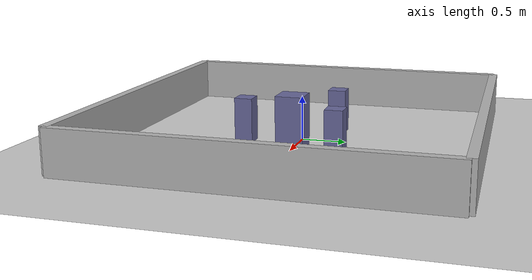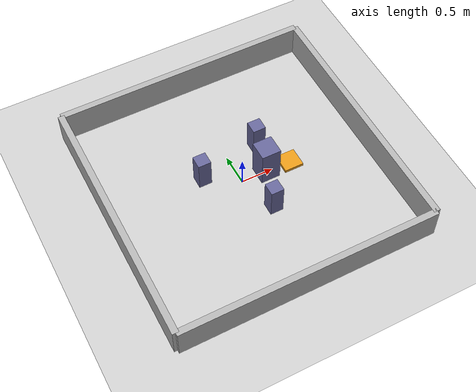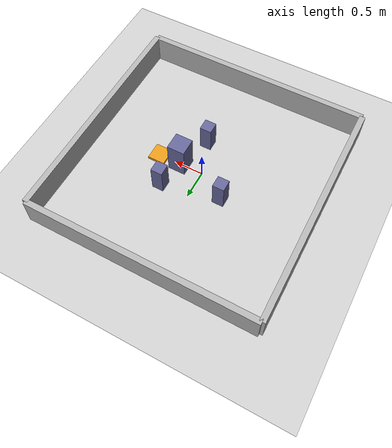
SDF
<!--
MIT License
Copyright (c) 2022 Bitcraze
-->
<sdf version="1.6">
 <world name="crazyflie_world">
  <physics name="1ms" type="ignored">
   <max_step_size>0.001</max_step_size>
   <real_time_factor>1.0</real_time_factor>
  </physics>
  <plugin filename="gz-sim-physics-system" name="gz::sim::systems::Physics"/>
  <plugin filename="gz-sim-user-commands-system" name="gz::sim::systems::UserCommands"/>
  <plugin filename="gz-sim-scene-broadcaster-system" name="gz::sim::systems::SceneBroadcaster"/>
  <plugin filename="gz-sim-sensors-system" name="gz::sim::systems::Sensors">
   <render_engine>ogre2</render_engine>
  </plugin>
  <light type="directional" name="sun">
   <pose>0 0 10 0 0 0</pose>
   <diffuse>0.8 0.8 0.8 1</diffuse>
   <specular>0.2 0.2 0.2 1</specular>
   <attenuation>
    <range>1000</range>
    <constant>0.9</constant>
    <linear>0.01</linear>
    <quadratic>0.001</quadratic>
   </attenuation>
   <direction>-0.5 0.1 -0.9</direction>
  </light>
  <model name="ground_plane">
   <static>true</static>
   <link name="link">
    <collision name="collision">
     <geometry><plane><normal>0 0 1</normal><size>100 100</size></plane></geometry>
    </collision>
    <visual name="visual">
     <geometry><plane><normal>0 0 1</normal><size>100 100</size></plane></geometry>
     <material>
      <ambient>0.8 0.8 0.8 1</ambient>
      <diffuse>0.8 0.8 0.8 1</diffuse>
      <specular>0.8 0.8 0.8 1</specular>
     </material>
    </visual>
   </link>
  </model>
  <model name="wall_east">
   <static>true</static>
   <pose>2 0 0.25 0 0 0</pose>
   <link name="link">
    <collision name="collision"><geometry><box><size>0.1 4 0.5</size></box></geometry></collision>
    <visual name="visual">
     <geometry><box><size>0.1 4 0.5</size></box></geometry>
     <material><ambient>0.7 0.7 0.7 1</ambient><diffuse>0.7 0.7 0.7 1</diffuse></material>
    </visual>
   </link>
  </model>
  <model name="wall_west">
   <static>true</static>
   <pose>-2 0 0.25 0 0 0</pose>
   <link name="link">
    <collision name="collision"><geometry><box><size>0.1 4 0.5</size></box></geometry></collision>
    <visual name="visual">
     <geometry><box><size>0.1 4 0.5</size></box></geometry>
     <material><ambient>0.7 0.7 0.7 1</ambient><diffuse>0.7 0.7 0.7 1</diffuse></material>
    </visual>
   </link>
  </model>
  <model name="wall_north">
   <static>true</static>
   <pose>0 2 0.25 0 0 0</pose>
   <link name="link">
    <collision name="collision"><geometry><box><size>4 0.1 0.5</size></box></geometry></collision>
    <visual name="visual">
     <geometry><box><size>4 0.1 0.5</size></box></geometry>
     <material><ambient>0.7 0.7 0.7 1</ambient><diffuse>0.7 0.7 0.7 1</diffuse></material>
    </visual>
   </link>
  </model>
  <model name="wall_south">
   <static>true</static>
   <pose>0 -2 0.25 0 0 0</pose>
   <link name="link">
    <collision name="collision"><geometry><box><size>4 0.1 0.5</size></box></geometry></collision>
    <visual name="visual">
     <geometry><box><size>4 0.1 0.5</size></box></geometry>
     <material><ambient>0.7 0.7 0.7 1</ambient><diffuse>0.7 0.7 0.7 1</diffuse></material>
    </visual>
   </link>
  </model>
  <model name="obstacle_1">
   <static>true</static>
   <pose>0.5 0.5 0.25 0 0 0</pose>
   <link name="link">
    <collision name="collision"><geometry><box><size>0.2 0.2 0.5</size></box></geometry></collision>
    <visual name="visual">
     <geometry><box><size>0.2 0.2 0.5</size></box></geometry>
     <material><ambient>0.4 0.4 0.6 1</ambient><diffuse>0.4 0.4 0.6 1</diffuse></material>
    </visual>
   </link>
  </model>
  <model name="obstacle_2">
   <static>true</static>
   <pose>-0.5 0.3 0.25 0 0 0</pose>
   <link name="link">
    <collision name="collision"><geometry><box><size>0.2 0.2 0.5</size></box></geometry></collision>
    <visual name="visual">
     <geometry><box><size>0.2 0.2 0.5</size></box></geometry>
     <material><ambient>0.4 0.4 0.6 1</ambient><diffuse>0.4 0.4 0.6 1</diffuse></material>
    </visual>
   </link>
  </model>
  <model name="obstacle_3">
   <static>true</static>
   <pose>0.2 -0.6 0.25 0 0 0</pose>
   <link name="link">
    <collision name="collision"><geometry><box><size>0.2 0.2 0.5</size></box></geometry></collision>
    <visual name="visual">
     <geometry><box><size>0.2 0.2 0.5</size></box></geometry>
     <material><ambient>0.4 0.4 0.6 1</ambient><diffuse>0.4 0.4 0.6 1</diffuse></material>
    </visual>
   </link>
  </model>
  <model name="obstacle_4">
   <static>true</static>
   <pose>0.4 0.0 0.3 0 0 0</pose>
   <link name="link">
    <collision name="collision"><geometry><box><size>0.3 0.3 0.6</size></box></geometry></collision>
    <visual name="visual">
     <geometry><box><size>0.3 0.3 0.6</size></box></geometry>
     <material><ambient>0.4 0.4 0.6 1</ambient><diffuse>0.4 0.4 0.6 1</diffuse></material>
    </visual>
   </link>
  </model>
  <model name="landing_pad">
   <static>true</static>
   <pose>0.8 0 0.025 0 0 0</pose>
   <link name="link">
    <collision name="collision"><geometry><box><size>0.3 0.3 0.05</size></box></geometry></collision>
    <visual name="visual">
     <geometry><box><size>0.3 0.3 0.05</size></box></geometry>
     <material><ambient>0.9 0.6 0.1 1</ambient><diffuse>0.9 0.6 0.1 1</diffuse></material>
    </visual>
   </link>
  </model>
 </world>
</sdf>
